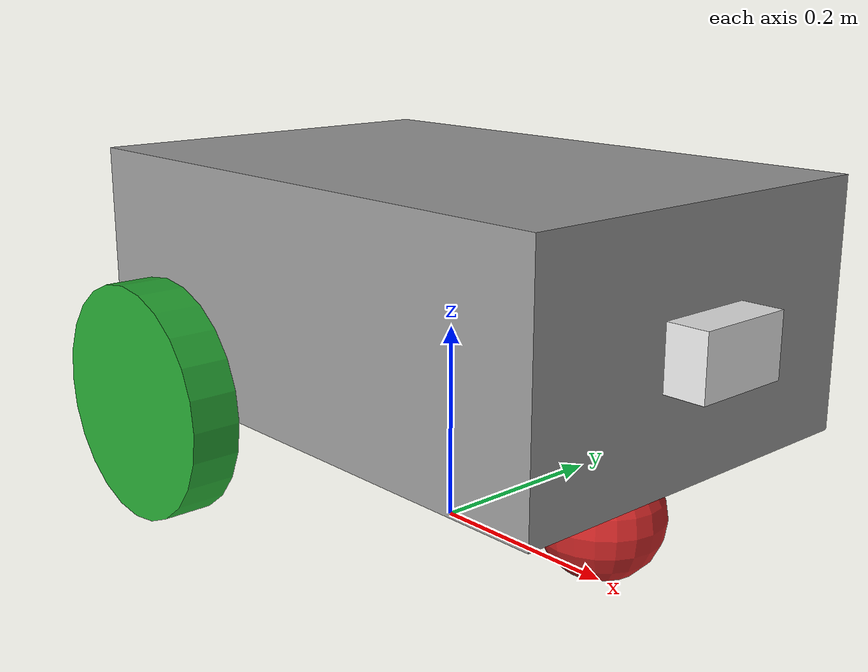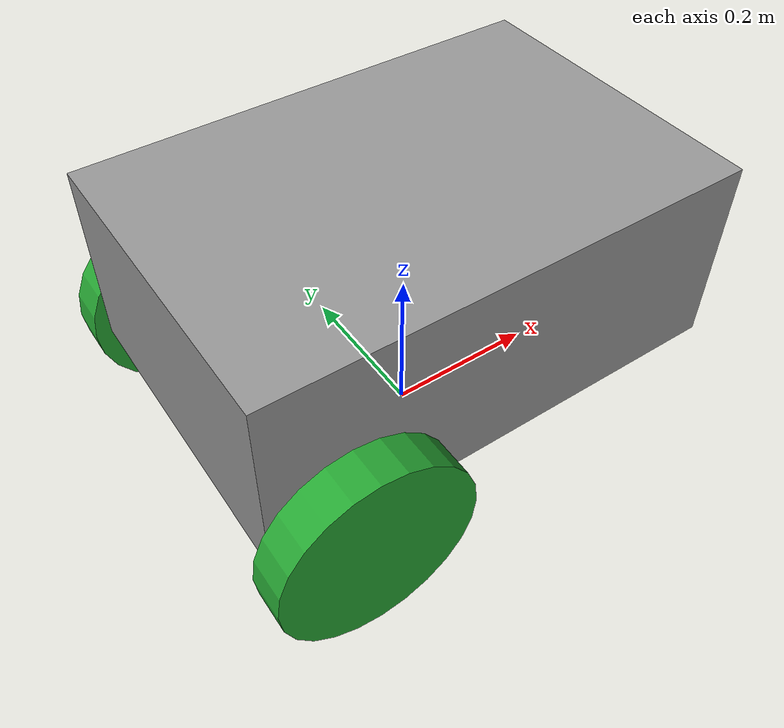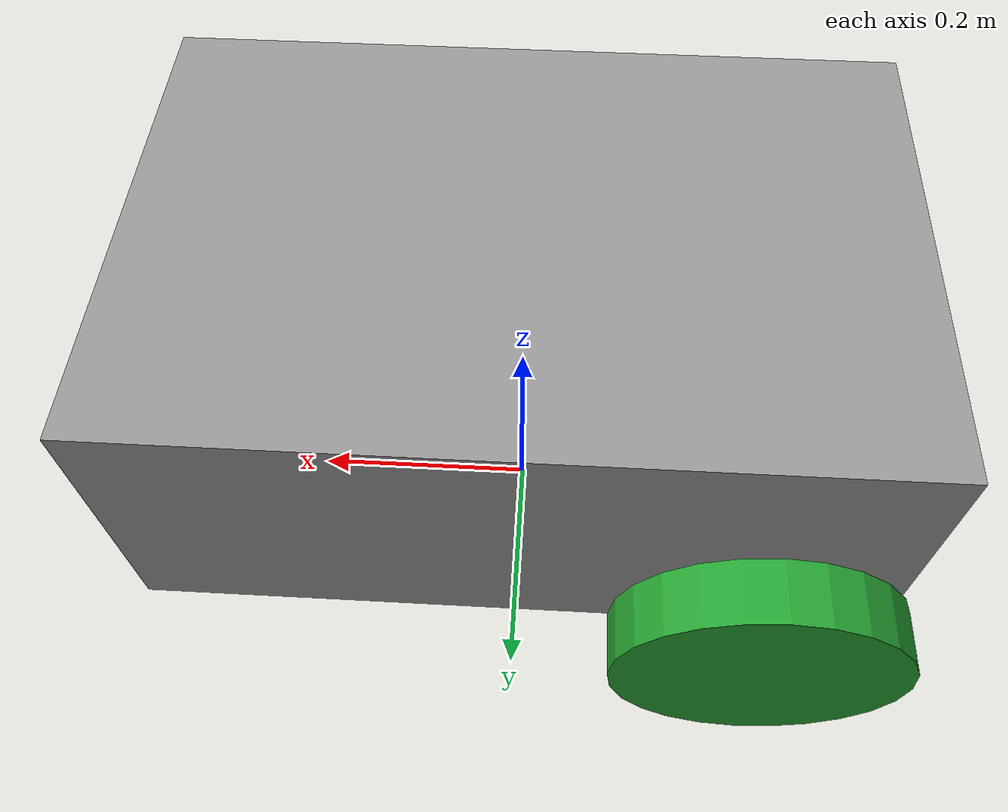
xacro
<?xml version="1.0"?>
<robot xmlns:xacro="http://www.ros.org/wiki/xacro" name="box_robot">
    <!-- box dimensions as xacro properties -->
    <xacro:property name="box_length" value="0.6"/>
    <xacro:property name="box_width" value="0.4"/>
    <xacro:property name="box_height" value="0.24"/>
    <xacro:property name="camera_length" value="0.04"/>
    <xacro:property name="camera_width" value="0.1"/>
    <xacro:property name="camera_height" value="0.06"/>
    <xacro:property name="wheel_radius" value="0.12"/>
    <xacro:property name="wheel_length" value="0.05"/>
    <xacro:property name="castor_radius" value="0.06"/>
    <link name="base_footprint_link" />

    <!-- macro to create a box link -->
    <xacro:macro name="box" params="name color length width height origin_x origin_y origin_z mass">
        <link name="${name}">
            <visual>
                <geometry>
                    <box size="${length} ${width} ${height}"/>
                </geometry>
                <material name="${color}"/>
                <origin xyz="${origin_x} ${origin_y} ${origin_z}" rpy="0 0 0"/>
            </visual>
            <collision>
                <geometry>
                    <box size="${length} ${width} ${height}"/>
                </geometry>
            </collision>
            <inertial>
                <mass value="${mass}"/>
                <origin xyz="${origin_x} ${origin_y} ${origin_z}" rpy="0 0 0"/>
                <inertia ixx="${(mass/12)*(height*height + width*width)}"
                 ixy="0.0" ixz="0.0" iyy="${(mass/12)*(length*length + height*height)}" iyz="0.0"
                 izz="${(mass/12)*(width*width  + length*length)}"/>
            </inertial>
        </link>
    </xacro:macro>

    <xacro:macro name="cylinder" params="name radius color length origin_x origin_y origin_z mass">
        <link name="${name}">
            <visual>
                <geometry>
                    <cylinder radius="${radius}" length="${length}"/>
                </geometry>
                <material name="${color}"/>
                <origin xyz="${origin_x} ${origin_y} ${origin_z}" rpy="0 0 0"/>
            </visual>
            <collision>
                <geometry>
                    <cylinder radius="${radius}" length="${length}"/>
                </geometry>
            </collision>
            <inertial>
                <mass value="${mass}"/>
                <origin xyz="${origin_x} ${origin_y} ${origin_z}" rpy="0 0 0"/>
                <inertia ixx="${(mass/12)*(3*radius*radius + length*length)}"
                 ixy="0.0" ixz="0.0" iyy="${(mass/12)*(3*radius*radius + length*length)}" iyz="0.0"
                 izz="${(mass*radius*radius)/2}"/>
            </inertial>
        </link>
    </xacro:macro>

    <xacro:macro name="sphere" params="name radius color origin_x origin_y origin_z mass">
        <link name="${name}">
            <visual>
                <geometry>
                    <sphere radius="${radius}"/>
                </geometry>
                <material name="${color}"/>
                <origin xyz="${origin_x} ${origin_y} ${origin_z}" rpy="0 0 0"/>
            </visual>
            <collision>
                <geometry>
                    <sphere radius="${radius}"/>
                </geometry>
            </collision>
            <inertial>
                <mass value="${mass}"/>
                <origin xyz="${origin_x} ${origin_y} ${origin_z}" rpy="0 0 0"/>
                <inertia ixx="${(2/5)*(mass)*(radius*radius)}"
                 ixy="0.0" ixz="0.0" iyy="${(2/5)*(mass)*(radius*radius)}" iyz="0.0"
                 izz="${(2/5)*(mass)*(radius*radius)}"/>
            </inertial>
        </link>
    </xacro:macro>

    <!-- MACRO TO CREATE JOINT -->
     <xacro:macro name="fixed_joint" params="name parent child origin_x origin_y origin_z roll pitch yaw">
        <joint name="${name}" type="fixed">
            <parent link="${parent}"/>
            <child link="${child}"/>
            <origin xyz="${origin_x} ${origin_y} ${origin_z}" rpy="${roll} ${pitch} ${yaw}"/>
        </joint>
    </xacro:macro>

    <xacro:macro name="revolute_joint" params="name parent child origin_x origin_y origin_z roll pitch yaw axis_x axis_y axis_z
    upper_limit lower_limit">
        <joint name="${name}" type="revolute">
            <parent link="${parent}"/>
            <child link="${child}"/>
            <origin xyz="${origin_x} ${origin_y} ${origin_z}" rpy="${roll} ${pitch} ${yaw}"/>
            <axis xyz="${axis_x} ${axis_y} ${axis_z}"/>
            <limit lower="${lower_limit}" upper="${upper_limit}" effort="100" velocity="10"/>
        </joint>
    </xacro:macro>

    <xacro:macro name="continuous_joint" params="name parent child origin_x origin_y origin_z roll pitch yaw axis_x axis_y axis_z">
        <joint name="${name}" type="continuous">
            <parent link="${parent}"/>
            <child link="${child}"/>
            <origin xyz="${origin_x} ${origin_y} ${origin_z}" rpy="${roll} ${pitch} ${yaw}"/>
            <axis xyz="${axis_x} ${axis_y} ${axis_z}"/>
        </joint>
    </xacro:macro>

    <!-- instantiate the box link using the xacro properties -->
    <xacro:box
        name="base_link"
        color="grey"
        length="${box_length}"
        width="${box_width}"
        height="${box_height}"
        origin_x="0" origin_y="0" origin_z="0"
        mass="5.0"/>

    <xacro:fixed_joint
        name="base_joint"
        parent="base_footprint_link"
        child="base_link"
        origin_x="0" origin_y="0" origin_z="${box_height + 0.005}"
        roll="0" pitch="0" yaw="0"/>

    <xacro:box
        name="camera_link"
        color="white"
        length="${camera_length}"
        width="${camera_width}"
        height="${camera_height}"
        origin_x="0" origin_y="0" origin_z="0"
        mass="0.5"/>

    <xacro:fixed_joint
        name="camera_joint"
        parent="base_link"
        child="camera_link"
        origin_x="${(box_length / 2) + (camera_length / 2)}" origin_y="0" origin_z="0"
        roll="0" pitch="0" yaw="0"/>

    <xacro:cylinder
        name="left_wheel_link"
        color="green"
        radius="${wheel_radius}"
        length="${wheel_length}"
        origin_x="0" origin_y="0" origin_z="0"
        mass="1.5"/>

    <xacro:continuous_joint
        name="left_wheel_joint"
        parent="base_link"
        child="left_wheel_link"
        origin_x="${-box_length / 3}" origin_y="${(box_width / 2) + (wheel_length / 2)}" origin_z="${-box_height / 2}"
        roll="${pi/2}" pitch="0" yaw="0"
        axis_x="0" axis_y="0" axis_z="-1"
        />

    <xacro:cylinder
        name="right_wheel_link"
        color="green"
        radius="${wheel_radius}"
        length="${wheel_length}"
        origin_x="0" origin_y="0" origin_z="0"
        mass="1.5"/>

    <xacro:continuous_joint
        name="right_wheel_joint"
        parent="base_link"
        child="right_wheel_link"
        origin_x="${-box_length / 3}" origin_y="${(-box_width / 2) - (wheel_length / 2)}" origin_z="${-box_height / 2}"
        roll="${pi/2}" pitch="0" yaw="0"
        axis_x="0" axis_y="0" axis_z="-1"
        />

    <xacro:sphere
        name="castor_link"
        color="red"
        radius="${castor_radius}"
        origin_x="0" origin_y="0" origin_z="0"
        mass="1.0"
    />

    <xacro:fixed_joint
        name="castor_joint"
        parent="base_link"
        child="castor_link"
        origin_x="${box_length / 3}" origin_y="0" origin_z="${(-castor_radius) + (-box_height / 2)}"
        roll="0" pitch="0" yaw="0"

    />

    <link name="camera_link_optical"></link>

    <joint name="camera_optical_joint" type="fixed">
    <parent link="camera_link"/>
    <child link="camera_link_optical"/>
    <origin xyz="0 0 0" rpy="${-pi/2} 0 ${-pi/2}"/>
    </joint>

</robot>
